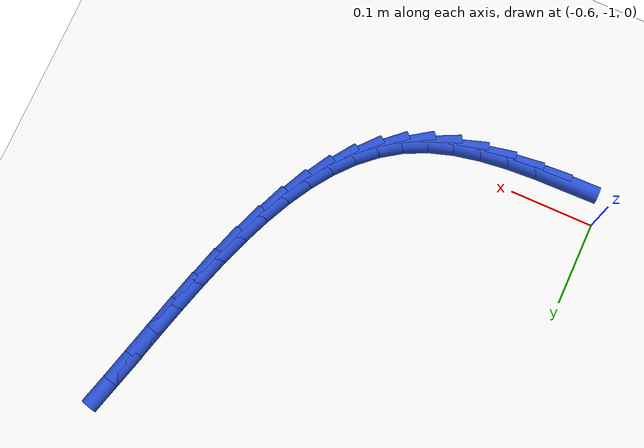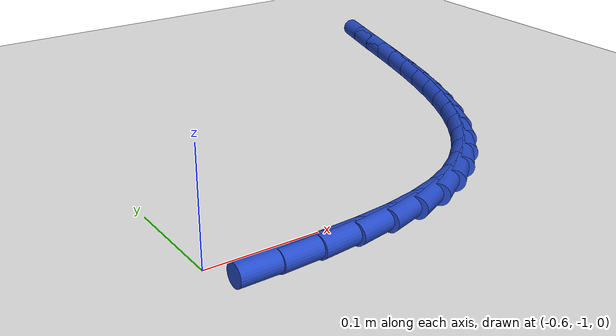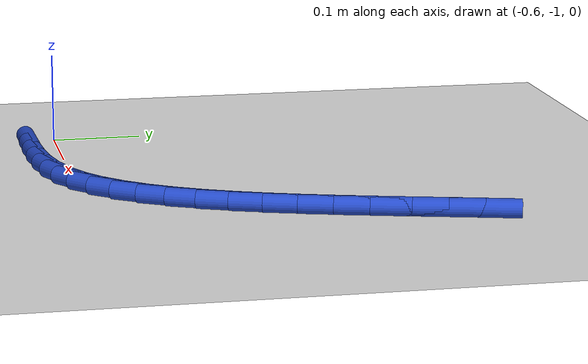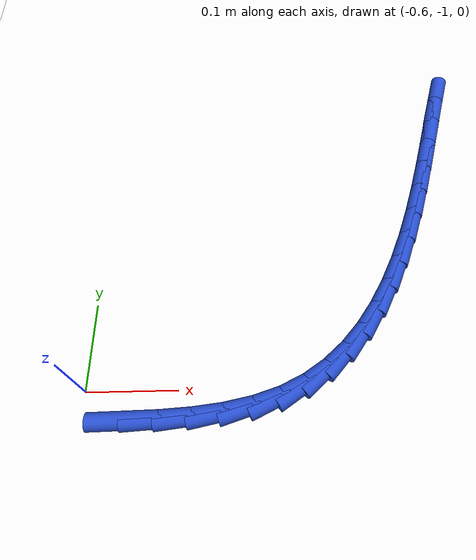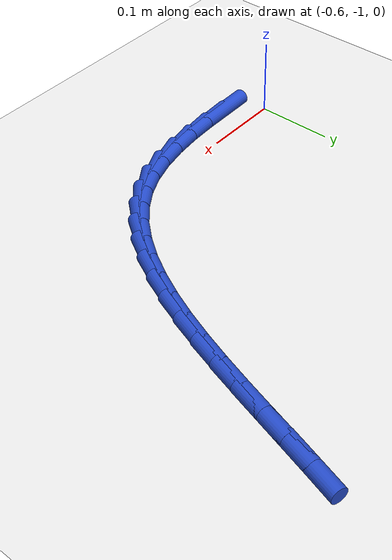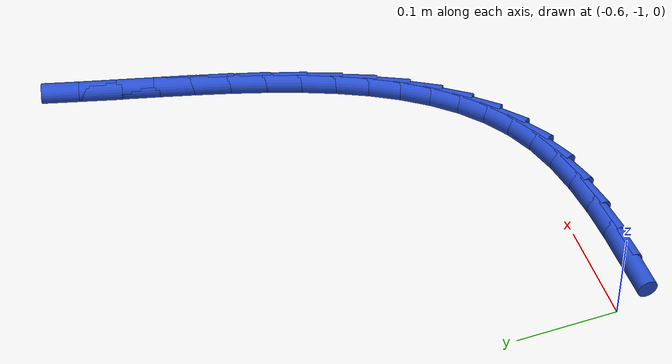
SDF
<sdf version="1.6">
 <world name="default">
  <model name="ground_plane">
   <static>1</static>
   <link name="link">
    <collision name="collision">
     <geometry><plane><normal>0 0 1</normal><size>100 100</size></plane></geometry>
     <surface><friction><ode><mu>100</mu><mu2>50</mu2></ode></friction></surface>
    </collision>
    <visual name="visual">
     <cast_shadows>0</cast_shadows>
     <geometry><plane><normal>0 0 1</normal><size>100 100</size></plane></geometry>
     <material>
      <script><uri>file://media/materials/scripts/gazebo.material</uri><name>Gazebo/WhiteGlow</name></script>
     </material>
    </visual>
   </link>
  </model>
  <model name="line">
   <link name="link_202">
    <pose>-0.5526345610225513 -1.032961565403794 0.01 0 1.57 0.018586066453789053</pose>
    <collision name="collision">
     <geometry><cylinder><radius>0.01</radius><length>0.08</length></cylinder></geometry>
    </collision>
    <visual name="visual">
     <material>
      <script><name>Gazebo/Blue</name><uri>file://media/materials/scripts/gazebo.material</uri></script>
     </material>
     <geometry><cylinder><radius>0.01</radius><length>0.08</length></cylinder></geometry>
    </visual>
   </link>
   <link name="link_203">
    <pose>-0.5176271051159758 -1.0323108395708953 0.01 0 1.57 0.05851148006426012</pose>
    <collision name="collision">
     <geometry><cylinder><radius>0.01</radius><length>0.08</length></cylinder></geometry>
    </collision>
    <visual name="visual">
     <material>
      <script><name>Gazebo/Blue</name><uri>file://media/materials/scripts/gazebo.material</uri></script>
     </material>
     <geometry><cylinder><radius>0.01</radius><length>0.08</length></cylinder></geometry>
    </visual>
   </link>
   <link name="link_204">
    <pose>-0.4830502092877101 -1.0302853822448435 0.01 0 1.57 0.11772148351733866</pose>
    <collision name="collision">
     <geometry><cylinder><radius>0.01</radius><length>0.08</length></cylinder></geometry>
    </collision>
    <visual name="visual">
     <material>
      <script><name>Gazebo/Blue</name><uri>file://media/materials/scripts/gazebo.material</uri></script>
     </material>
     <geometry><cylinder><radius>0.01</radius><length>0.08</length></cylinder></geometry>
    </visual>
   </link>
   <link name="link_205">
    <pose>-0.44947817502509474 -1.026314874037706 0.01 0 1.57 0.20001808646663352</pose>
    <collision name="collision">
     <geometry><cylinder><radius>0.01</radius><length>0.08</length></cylinder></geometry>
    </collision>
    <visual name="visual">
     <material>
      <script><name>Gazebo/Blue</name><uri>file://media/materials/scripts/gazebo.material</uri></script>
     </material>
     <geometry><cylinder><radius>0.01</radius><length>0.08</length></cylinder></geometry>
    </visual>
   </link>
   <link name="link_206">
    <pose>-0.41748530381547083 -1.019828995561551 0.01 0 1.57 0.3104007069874497</pose>
    <collision name="collision">
     <geometry><cylinder><radius>0.01</radius><length>0.08</length></cylinder></geometry>
    </collision>
    <visual name="visual">
     <material>
      <script><name>Gazebo/Blue</name><uri>file://media/materials/scripts/gazebo.material</uri></script>
     </material>
     <geometry><cylinder><radius>0.01</radius><length>0.08</length></cylinder></geometry>
    </visual>
   </link>
   <link name="link_207">
    <pose>-0.3876458971461789 -1.0102574274284464 0.01 0 1.57 0.4509795665375495</pose>
    <collision name="collision">
     <geometry><cylinder><radius>0.01</radius><length>0.08</length></cylinder></geometry>
    </collision>
    <visual name="visual">
     <material>
      <script><name>Gazebo/Blue</name><uri>file://media/materials/scripts/gazebo.material</uri></script>
     </material>
     <geometry><cylinder><radius>0.01</radius><length>0.08</length></cylinder></geometry>
    </visual>
   </link>
   <link name="link_208">
    <pose>-0.36047173164809193 -0.9970979633615266 0.01 0 1.57 0.5985917029926544</pose>
    <collision name="collision">
     <geometry><cylinder><radius>0.01</radius><length>0.08</length></cylinder></geometry>
    </collision>
    <visual name="visual">
     <material>
      <script><name>Gazebo/Blue</name><uri>file://media/materials/scripts/gazebo.material</uri></script>
     </material>
     <geometry><cylinder><radius>0.01</radius><length>0.08</length></cylinder></geometry>
    </visual>
   </link>
   <link name="link_209">
    <pose>-0.33597679950568754 -0.9803906717759528 0.01 0 1.57 0.7358221278789391</pose>
    <collision name="collision">
     <geometry><cylinder><radius>0.01</radius><length>0.08</length></cylinder></geometry>
    </collision>
    <visual name="visual">
     <material>
      <script><name>Gazebo/Blue</name><uri>file://media/materials/scripts/gazebo.material</uri></script>
     </material>
     <geometry><cylinder><radius>0.01</radius><length>0.08</length></cylinder></geometry>
    </visual>
   </link>
   <link name="link_210">
    <pose>-0.3139372125331506 -0.9604347623788111 0.01 0 1.57 0.8577106304784974</pose>
    <collision name="collision">
     <geometry><cylinder><radius>0.01</radius><length>0.08</length></cylinder></geometry>
    </collision>
    <visual name="visual">
     <material>
      <script><name>Gazebo/Blue</name><uri>file://media/materials/scripts/gazebo.material</uri></script>
     </material>
     <geometry><cylinder><radius>0.01</radius><length>0.08</length></cylinder></geometry>
    </visual>
   </link>
   <link name="link_211">
    <pose>-0.29412760492491674 -0.9375310545614592 0.01 0 1.57 0.962187641192192</pose>
    <collision name="collision">
     <geometry><cylinder><radius>0.01</radius><length>0.08</length></cylinder></geometry>
    </collision>
    <visual name="visual">
     <material>
      <script><name>Gazebo/Blue</name><uri>file://media/materials/scripts/gazebo.material</uri></script>
     </material>
     <geometry><cylinder><radius>0.01</radius><length>0.08</length></cylinder></geometry>
    </visual>
   </link>
   <link name="link_212">
    <pose>-0.27632261087542104 -0.9119803677152554 0.01 0 1.57 1.049364627592058</pose>
    <collision name="collision">
     <geometry><cylinder><radius>0.01</radius><length>0.08</length></cylinder></geometry>
    </collision>
    <visual name="visual">
     <material>
      <script><name>Gazebo/Blue</name><uri>file://media/materials/scripts/gazebo.material</uri></script>
     </material>
     <geometry><cylinder><radius>0.01</radius><length>0.08</length></cylinder></geometry>
    </visual>
   </link>
   <link name="link_213">
    <pose>-0.26029686457909906 -0.8840835212315584 0.01 0 1.57 1.120575944036004</pose>
    <collision name="collision">
     <geometry><cylinder><radius>0.01</radius><length>0.08</length></cylinder></geometry>
    </collision>
    <visual name="visual">
     <material>
      <script><name>Gazebo/Blue</name><uri>file://media/materials/scripts/gazebo.material</uri></script>
     </material>
     <geometry><cylinder><radius>0.01</radius><length>0.08</length></cylinder></geometry>
    </visual>
   </link>
   <link name="link_214">
    <pose>-0.2458250002303862 -0.8541413345017267 0.01 0 1.57 1.1776048197559839</pose>
    <collision name="collision">
     <geometry><cylinder><radius>0.01</radius><length>0.08</length></cylinder></geometry>
    </collision>
    <visual name="visual">
     <material>
      <script><name>Gazebo/Blue</name><uri>file://media/materials/scripts/gazebo.material</uri></script>
     </material>
     <geometry><cylinder><radius>0.01</radius><length>0.08</length></cylinder></geometry>
    </visual>
   </link>
   <link name="link_215">
    <pose>-0.23268165202371738 -0.8224546269171173 0.01 0 1.57 1.2222179081017568</pose>
    <collision name="collision">
     <geometry><cylinder><radius>0.01</radius><length>0.08</length></cylinder></geometry>
    </collision>
    <visual name="visual">
     <material>
      <script><name>Gazebo/Blue</name><uri>file://media/materials/scripts/gazebo.material</uri></script>
     </material>
     <geometry><cylinder><radius>0.01</radius><length>0.08</length></cylinder></geometry>
    </visual>
   </link>
   <link name="link_216">
    <pose>-0.22064145415352893 -0.789324217869091 0.01 0 1.57 1.2559419197232735</pose>
    <collision name="collision">
     <geometry><cylinder><radius>0.01</radius><length>0.08</length></cylinder></geometry>
    </collision>
    <visual name="visual">
     <material>
      <script><name>Gazebo/Blue</name><uri>file://media/materials/scripts/gazebo.material</uri></script>
     </material>
     <geometry><cylinder><radius>0.01</radius><length>0.08</length></cylinder></geometry>
    </visual>
   </link>
   <link name="link_217">
    <pose>-0.20947904081425564 -0.7550509267490049 0.01 0 1.57 1.2799826622537822</pose>
    <collision name="collision">
     <geometry><cylinder><radius>0.01</radius><length>0.08</length></cylinder></geometry>
    </collision>
    <visual name="visual">
     <material>
      <script><name>Gazebo/Blue</name><uri>file://media/materials/scripts/gazebo.material</uri></script>
     </material>
     <geometry><cylinder><radius>0.01</radius><length>0.08</length></cylinder></geometry>
    </visual>
   </link>
   <link name="link_218">
    <pose>-0.1989690462003331 -0.7199355729482178 0.01 0 1.57 1.2952123962805884</pose>
    <collision name="collision">
     <geometry><cylinder><radius>0.01</radius><length>0.08</length></cylinder></geometry>
    </collision>
    <visual name="visual">
     <material>
      <script><name>Gazebo/Blue</name><uri>file://media/materials/scripts/gazebo.material</uri></script>
     </material>
     <geometry><cylinder><radius>0.01</radius><length>0.08</length></cylinder></geometry>
    </visual>
   </link>
   <link name="link_219">
    <pose>-0.1888861045061966 -0.6842789758580876 0.01 0 1.57 1.302182182050375</pose>
    <collision name="collision">
     <geometry><cylinder><radius>0.01</radius><length>0.08</length></cylinder></geometry>
    </collision>
    <visual name="visual">
     <material>
      <script><name>Gazebo/Blue</name><uri>file://media/materials/scripts/gazebo.material</uri></script>
     </material>
     <geometry><cylinder><radius>0.01</radius><length>0.08</length></cylinder></geometry>
    </visual>
   </link>
   <link name="link_220">
    <pose>-0.17900484992628157 -0.6483819548699734 0.01 0 1.57 1.3011370503036503</pose>
    <collision name="collision">
     <geometry><cylinder><radius>0.01</radius><length>0.08</length></cylinder></geometry>
    </collision>
    <visual name="visual">
     <material>
      <script><name>Gazebo/Blue</name><uri>file://media/materials/scripts/gazebo.material</uri></script>
     </material>
     <geometry><cylinder><radius>0.01</radius><length>0.08</length></cylinder></geometry>
    </visual>
   </link>
   <link name="link_221">
    <pose>-0.16909991665502333 -0.6125453293752329 0.01 0 1.57 1.2920238226455985</pose>
    <collision name="collision">
     <geometry><cylinder><radius>0.01</radius><length>0.08</length></cylinder></geometry>
    </collision>
    <visual name="visual">
     <material>
      <script><name>Gazebo/Blue</name><uri>file://media/materials/scripts/gazebo.material</uri></script>
     </material>
     <geometry><cylinder><radius>0.01</radius><length>0.08</length></cylinder></geometry>
    </visual>
   </link>
  </model>
 </world>
</sdf>
